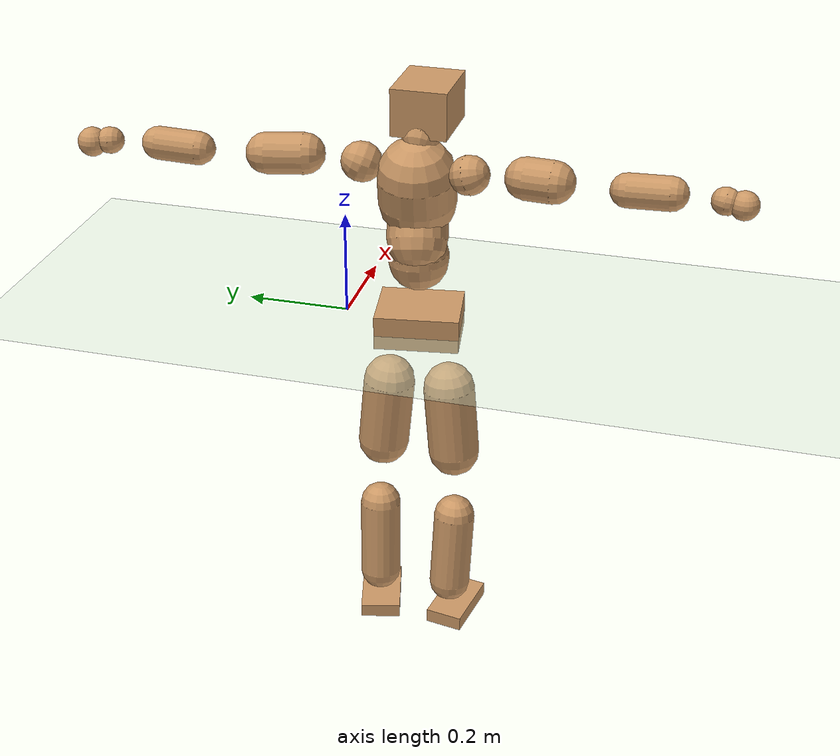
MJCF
<mujoco model="humanoid">
  <compiler coordinate="local" angle="radian"/>
  <default>
    <joint damping="0.0" armature="0.01" stiffness="0.0" limited="true"/>
    <geom conaffinity="1" condim="3" contype="7" margin="0.001" rgba="0.8 0.6 .4 1"/>
  </default>
  <asset>
    <texture type="skybox" builtin="gradient" rgb1=".4 .5 .6" rgb2="0 0 0" width="100" height="100"/>
    <texture builtin="flat" height="1278" mark="cross" markrgb="1 1 1" name="texgeom" random="0.01" rgb1="0.8 0.6 0.4" rgb2="0.8 0.6 0.4" type="cube" width="127"/>
    <texture builtin="checker" height="100" name="texplane" rgb1="0 0 0" rgb2="0.8 0.8 0.8" type="2d" width="100"/>
    <material name="MatPlane" reflectance="0.5" shininess="1" specular="1" texrepeat="60 60" texture="texplane"/>
    <material name="geom" texture="texgeom" texuniform="true"/>
  </asset>
  <worldbody>
    <light cutoff="100" diffuse="1 1 1" dir="-0 0 -1.3" directional="true" exponent="1" pos="0 0 1.3" specular=".1 .1 .1"/>
    <geom conaffinity="1" condim="3" name="floor" pos="0 0 0" rgba="0.8 0.9 0.8 1" size="100 100 .2" type="plane" material="MatPlane"/>
    <body name="Pelvis" pos="-0.0067 -0.1484 0.0145">
      <freejoint name="Pelvis"/>
      <geom type="box" contype="1" conaffinity="1" density="5359.374242" pos="-0.0044 -0.0006 -0.0103" size="0.066 0.0806 0.0328" quat="0.9973 0.0000 0.0000 0.0733" name="Pelvis"/>
      <body name="L_Hip" pos="-0.0061 0.0528 -0.0711">
        <joint name="L_Hip_x" type="hinge" pos="0 0 0" axis="1 0 0" stiffness="1600" damping="160" armature="0.02" range="-180.0000 180.0000"/>
        <joint name="L_Hip_y" type="hinge" pos="0 0 0" axis="0 1 0" stiffness="1600" damping="160" armature="0.02" range="-180.0000 180.0000"/>
        <joint name="L_Hip_z" type="hinge" pos="0 0 0" axis="0 0 1" stiffness="1600" damping="160" armature="0.02" range="-180.0000 180.0000"/>
        <geom type="capsule" contype="1" conaffinity="1" density="2040.816327" size="0.0505" fromto="-0.0004 0.0069 -0.0802 -0.0012 0.0190 -0.2199" name="L_Hip"/>
        <body name="L_Knee" pos="-0.0016 0.026 -0.3">
          <joint name="L_Knee_x" type="hinge" pos="0 0 0" axis="1 0 0" stiffness="1600" damping="160" armature="0.02" range="-180.0000 180.0000"/>
          <joint name="L_Knee_y" type="hinge" pos="0 0 0" axis="0 1 0" stiffness="1600" damping="160" armature="0.02" range="-180.0000 180.0000"/>
          <joint name="L_Knee_z" type="hinge" pos="0 0 0" axis="0 0 1" stiffness="1600" damping="160" armature="0.02" range="-180.0000 180.0000"/>
          <geom type="capsule" contype="1" conaffinity="1" density="1234.567901" size="0.041" fromto="-0.0068 -0.0015 -0.0707 -0.0222 -0.0048 -0.2300" name="L_Knee"/>
          <body name="L_Ankle" pos="-0.029 -0.0063 -0.3007">
            <joint name="L_Ankle_x" type="hinge" pos="0 0 0" axis="1 0 0" stiffness="1600" damping="160" armature="0.02" range="-180.0000 180.0000"/>
            <joint name="L_Ankle_y" type="hinge" pos="0 0 0" axis="0 1 0" stiffness="1600" damping="160" armature="0.02" range="-180.0000 180.0000"/>
            <joint name="L_Ankle_z" type="hinge" pos="0 0 0" axis="0 0 1" stiffness="1600" damping="160" armature="0.02" range="-180.0000 180.0000"/>
            <geom type="box" contype="1" conaffinity="1" density="999.999974" pos="0.0453 0.0112 -0.0214" size="0.0684 0.0404 0.014" quat="0.9927 0.0000 0.0000 0.1208" name="L_Ankle"/>
            <body name="L_Toe" pos="0.0906 0.0224 -0.0428">
              <joint name="L_Toe_x" type="hinge" pos="0 0 0" axis="1 0 0" stiffness="1000" damping="100" armature="0.02" range="-180.0000 180.0000"/>
              <joint name="L_Toe_y" type="hinge" pos="0 0 0" axis="0 1 0" stiffness="1000" damping="100" armature="0.02" range="-180.0000 180.0000"/>
              <joint name="L_Toe_z" type="hinge" pos="0 0 0" axis="0 0 1" stiffness="1000" damping="100" armature="0.02" range="-180.0000 180.0000"/>
              <geom type="box" contype="1" conaffinity="1" density="8196930.76842" pos="0.0000 0.0000 0.0235" size="0.0007 0.002 0.0008" quat="0.9917 0.0000 0.0000 0.1284" name="L_Toe"/>
            </body>
          </body>
        </body>
      </body>
      <body name="R_Hip" pos="-0.0047 -0.0539 -0.0709">
        <joint name="R_Hip_x" type="hinge" pos="0 0 0" axis="1 0 0" stiffness="1600" damping="160" armature="0.02" range="-180.0000 180.0000"/>
        <joint name="R_Hip_y" type="hinge" pos="0 0 0" axis="0 1 0" stiffness="1600" damping="160" armature="0.02" range="-180.0000 180.0000"/>
        <joint name="R_Hip_z" type="hinge" pos="0 0 0" axis="0 0 1" stiffness="1600" damping="160" armature="0.02" range="-180.0000 180.0000"/>
        <geom type="capsule" contype="1" conaffinity="1" density="2040.816327" size="0.0502" fromto="-0.0011 -0.0072 -0.0799 -0.0031 -0.0201 -0.2236" name="R_Hip"/>
        <body name="R_Knee" pos="-0.0042 -0.0273 -0.3034">
          <joint name="R_Knee_x" type="hinge" pos="0 0 0" axis="1 0 0" stiffness="1600" damping="160" armature="0.02" range="-180.0000 180.0000"/>
          <joint name="R_Knee_y" type="hinge" pos="0 0 0" axis="0 1 0" stiffness="1600" damping="160" armature="0.02" range="-180.0000 180.0000"/>
          <joint name="R_Knee_z" type="hinge" pos="0 0 0" axis="0 0 1" stiffness="1600" damping="160" armature="0.02" range="-180.0000 180.0000"/>
          <geom type="capsule" contype="1" conaffinity="1" density="1234.567901" size="0.0412" fromto="-0.0066 0.0019 -0.0709 -0.0211 0.0061 -0.2271" name="R_Knee"/>
          <body name="R_Ankle" pos="-0.0277 0.008 -0.298">
            <joint name="R_Ankle_x" type="hinge" pos="0 0 0" axis="1 0 0" stiffness="1600" damping="160" armature="0.02" range="-180.0000 180.0000"/>
            <joint name="R_Ankle_y" type="hinge" pos="0 0 0" axis="0 1 0" stiffness="1600" damping="160" armature="0.02" range="-180.0000 180.0000"/>
            <joint name="R_Ankle_z" type="hinge" pos="0 0 0" axis="0 0 1" stiffness="1600" damping="160" armature="0.02" range="-180.0000 180.0000"/>
            <geom type="box" contype="1" conaffinity="1" density="1000.000051" pos="0.0459 -0.0077 -0.0170" size="0.0669 0.0374 0.0147" quat="0.9966 0.0000 0.0000 -0.0830" name="R_Ankle"/>
            <body name="R_Toe" pos="0.0918 -0.0154 -0.0341">
              <joint name="R_Toe_x" type="hinge" pos="0 0 0" axis="1 0 0" stiffness="1000" damping="100" armature="0.02" range="-180.0000 180.0000"/>
              <joint name="R_Toe_y" type="hinge" pos="0 0 0" axis="0 1 0" stiffness="1000" damping="100" armature="0.02" range="-180.0000 180.0000"/>
              <joint name="R_Toe_z" type="hinge" pos="0 0 0" axis="0 0 1" stiffness="1000" damping="100" armature="0.02" range="-180.0000 180.0000"/>
              <geom type="box" contype="1" conaffinity="1" density="8500181.877688" pos="0.0000 0.0000 0.0188" size="0.0007 0.0019 0.0008" quat="0.9975 0.0000 0.0000 -0.0709" name="R_Toe"/>
            </body>
          </body>
        </body>
      </body>
      <body name="Torso" pos="-0.0155 -0.0028 0.0802">
        <joint name="Torso_x" type="hinge" pos="0 0 0" axis="1 0 0" stiffness="2000" damping="200" armature="0.02" range="-180.0000 180.0000"/>
        <joint name="Torso_y" type="hinge" pos="0 0 0" axis="0 1 0" stiffness="2000" damping="200" armature="0.02" range="-180.0000 180.0000"/>
        <joint name="Torso_z" type="hinge" pos="0 0 0" axis="0 0 1" stiffness="2000" damping="200" armature="0.02" range="-180.0000 180.0000"/>
        <geom type="capsule" contype="1" conaffinity="1" density="2040.816327" size="0.0573" fromto="-0.0004 0.0026 0.0572 -0.0003 0.0019 0.0425" name="Torso"/>
        <body name="Spine" pos="-0.0007 0.0045 0.0998">
          <joint name="Spine_x" type="hinge" pos="0 0 0" axis="1 0 0" stiffness="2000" damping="200" armature="0.02" range="-180.0000 180.0000"/>
          <joint name="Spine_y" type="hinge" pos="0 0 0" axis="0 1 0" stiffness="2000" damping="200" armature="0.02" range="-180.0000 180.0000"/>
          <joint name="Spine_z" type="hinge" pos="0 0 0" axis="0 0 1" stiffness="2000" damping="200" armature="0.02" range="-180.0000 180.0000"/>
          <geom type="capsule" contype="1" conaffinity="1" density="2040.816327" size="0.0578" fromto="0.0281 0.0064 0.0501 -0.0078 -0.0018 -0.0138" name="Spine"/>
          <body name="Chest" pos="0.0203 0.0046 0.0363">
            <joint name="Chest_x" type="hinge" pos="0 0 0" axis="1 0 0" stiffness="2000" damping="200" armature="0.02" range="-180.0000 180.0000"/>
            <joint name="Chest_y" type="hinge" pos="0 0 0" axis="0 1 0" stiffness="2000" damping="200" armature="0.02" range="-180.0000 180.0000"/>
            <joint name="Chest_z" type="hinge" pos="0 0 0" axis="0 0 1" stiffness="2000" damping="200" armature="0.02" range="-180.0000 180.0000"/>
            <geom type="capsule" contype="1" conaffinity="1" density="2040.816327" size="0.0737" fromto="-0.0151 -0.0013 0.0722 -0.0046 -0.0004 0.0221" name="Chest"/>
            <body name="Neck" pos="-0.0187 -0.004 0.1247">
              <joint name="Neck_x" type="hinge" pos="0 0 0" axis="1 0 0" stiffness="1000" damping="100" armature="0.02" range="-180.0000 180.0000"/>
              <joint name="Neck_y" type="hinge" pos="0 0 0" axis="0 1 0" stiffness="1000" damping="100" armature="0.02" range="-180.0000 180.0000"/>
              <joint name="Neck_z" type="hinge" pos="0 0 0" axis="0 0 1" stiffness="1000" damping="100" armature="0.02" range="-180.0000 180.0000"/>
              <geom type="capsule" contype="1" conaffinity="1" density="1000" size="0.0348" fromto="0.0230 -0.0013 0.0261 0.0159 -0.0009 0.0180" name="Neck"/>
              <body name="Head" pos="0.039 -0.0023 0.0441">
                <joint name="Head_x" type="hinge" pos="0 0 0" axis="1 0 0" stiffness="1000" damping="100" armature="0.02" range="-180.0000 180.0000"/>
                <joint name="Head_y" type="hinge" pos="0 0 0" axis="0 1 0" stiffness="1000" damping="100" armature="0.02" range="-180.0000 180.0000"/>
                <joint name="Head_z" type="hinge" pos="0 0 0" axis="0 0 1" stiffness="1000" damping="100" armature="0.02" range="-180.0000 180.0000"/>
                <geom type="box" contype="1" conaffinity="1" density="2249.999891" pos="0.0205 -0.0001 0.0230" size="0.0678 0.0527 0.0445" quat="1.0000 0.0000 0.0000 -0.0031" name="Head"/>
              </body>
            </body>
            <body name="L_Thorax" pos="-0.0196 0.0639 0.0797">
              <joint name="L_Thorax_x" type="hinge" pos="0 0 0" axis="1 0 0" stiffness="1000" damping="100" armature="0.02" range="-180.0000 180.0000"/>
              <joint name="L_Thorax_y" type="hinge" pos="0 0 0" axis="0 1 0" stiffness="1000" damping="100" armature="0.02" range="-180.0000 180.0000"/>
              <joint name="L_Thorax_z" type="hinge" pos="0 0 0" axis="0 0 1" stiffness="1000" damping="100" armature="0.02" range="-180.0000 180.0000"/>
              <geom type="capsule" contype="1" conaffinity="1" density="1000" size="0.038" fromto="-0.0053 0.0351 0.0130 -0.0056 0.0369 0.0137" name="L_Thorax"/>
              <body name="L_Shoulder" pos="-0.0109 0.072 0.0267">
                <joint name="L_Shoulder_x" type="hinge" pos="0 0 0" axis="1 0 0" stiffness="1000" damping="100" armature="0.02" range="-720.0000 720.0000"/>
                <joint name="L_Shoulder_y" type="hinge" pos="0 0 0" axis="0 1 0" stiffness="1000" damping="100" armature="0.02" range="-720.0000 720.0000"/>
                <joint name="L_Shoulder_z" type="hinge" pos="0 0 0" axis="0 0 1" stiffness="1000" damping="100" armature="0.02" range="-720.0000 720.0000"/>
                <geom type="capsule" contype="1" conaffinity="1" density="1000" size="0.0388" fromto="-0.0098 0.0681 -0.0026 -0.0197 0.1376 -0.0052" name="L_Shoulder"/>
                <body name="L_Elbow" pos="-0.0295 0.2057 -0.0078">
                  <joint name="L_Elbow_x" type="hinge" pos="0 0 0" axis="1 0 0" stiffness="1000" damping="100" armature="0.02" range="-720.0000 720.0000"/>
                  <joint name="L_Elbow_y" type="hinge" pos="0 0 0" axis="0 1 0" stiffness="1000" damping="100" armature="0.02" range="-720.0000 720.0000"/>
                  <joint name="L_Elbow_z" type="hinge" pos="0 0 0" axis="0 0 1" stiffness="1000" damping="100" armature="0.02" range="-720.0000 720.0000"/>
                  <geom type="capsule" contype="1" conaffinity="1" density="1000" size="0.0312" fromto="-0.0010 0.0612 0.0023 -0.0022 0.1397 0.0052" name="L_Elbow"/>
                  <body name="L_Wrist" pos="-0.0032 0.2009 0.0075">
                    <joint name="L_Wrist_x" type="hinge" pos="0 0 0" axis="1 0 0" stiffness="600" damping="60" armature="0.02" range="-180.0000 180.0000"/>
                    <joint name="L_Wrist_y" type="hinge" pos="0 0 0" axis="0 1 0" stiffness="600" damping="60" armature="0.02" range="-180.0000 180.0000"/>
                    <joint name="L_Wrist_z" type="hinge" pos="0 0 0" axis="0 0 1" stiffness="600" damping="60" armature="0.02" range="-180.0000 180.0000"/>
                    <geom type="capsule" contype="1" conaffinity="1" density="1000" size="0.0252" fromto="-0.0057 0.0328 -0.0041 -0.0060 0.0348 -0.0043" name="L_Wrist"/>
                    <body name="L_Hand" pos="-0.0117 0.0677 -0.0084">
                      <joint name="L_Hand_x" type="hinge" pos="0 0 0" axis="1 0 0" stiffness="600" damping="60" armature="0.02" range="-180.0000 180.0000"/>
                      <joint name="L_Hand_y" type="hinge" pos="0 0 0" axis="0 1 0" stiffness="600" damping="60" armature="0.02" range="-180.0000 180.0000"/>
                      <joint name="L_Hand_z" type="hinge" pos="0 0 0" axis="0 0 1" stiffness="600" damping="60" armature="0.02" range="-180.0000 180.0000"/>
                      <geom type="sphere" contype="1" conaffinity="1" density="1000" size="0.0275" pos="0.0000 0.0000 0.0000" name="L_Hand"/>
                    </body>
                  </body>
                </body>
              </body>
            </body>
            <body name="R_Thorax" pos="-0.0209 -0.065 0.0785">
              <joint name="R_Thorax_x" type="hinge" pos="0 0 0" axis="1 0 0" stiffness="1000" damping="100" armature="0.02" range="-180.0000 180.0000"/>
              <joint name="R_Thorax_y" type="hinge" pos="0 0 0" axis="0 1 0" stiffness="1000" damping="100" armature="0.02" range="-180.0000 180.0000"/>
              <joint name="R_Thorax_z" type="hinge" pos="0 0 0" axis="0 0 1" stiffness="1000" damping="100" armature="0.02" range="-180.0000 180.0000"/>
              <geom type="capsule" contype="1" conaffinity="1" density="1000" size="0.0368" fromto="-0.0068 -0.0364 0.0103 -0.0071 -0.0382 0.0109" name="R_Thorax"/>
              <body name="R_Shoulder" pos="-0.0139 -0.0746 0.0212">
                <joint name="R_Shoulder_x" type="hinge" pos="0 0 0" axis="1 0 0" stiffness="1000" damping="100" armature="0.02" range="-720.0000 720.0000"/>
                <joint name="R_Shoulder_y" type="hinge" pos="0 0 0" axis="0 1 0" stiffness="1000" damping="100" armature="0.02" range="-720.0000 720.0000"/>
                <joint name="R_Shoulder_z" type="hinge" pos="0 0 0" axis="0 0 1" stiffness="1000" damping="100" armature="0.02" range="-720.0000 720.0000"/>
                <geom type="capsule" contype="1" conaffinity="1" density="1000" size="0.0392" fromto="-0.0063 -0.0689 0.0004 -0.0108 -0.1188 0.0006" name="R_Shoulder"/>
                <body name="R_Elbow" pos="-0.017 -0.1877 0.001">
                  <joint name="R_Elbow_x" type="hinge" pos="0 0 0" axis="1 0 0" stiffness="1000" damping="100" armature="0.02" range="-720.0000 720.0000"/>
                  <joint name="R_Elbow_y" type="hinge" pos="0 0 0" axis="0 1 0" stiffness="1000" damping="100" armature="0.02" range="-720.0000 720.0000"/>
                  <joint name="R_Elbow_z" type="hinge" pos="0 0 0" axis="0 0 1" stiffness="1000" damping="100" armature="0.02" range="-720.0000 720.0000"/>
                  <geom type="capsule" contype="1" conaffinity="1" density="1000" size="0.0309" fromto="-0.0010 -0.0608 0.0021 -0.0023 -0.1369 0.0047" name="R_Elbow"/>
                  <body name="R_Wrist" pos="-0.0033 -0.1978 0.0067">
                    <joint name="R_Wrist_x" type="hinge" pos="0 0 0" axis="1 0 0" stiffness="600" damping="60" armature="0.02" range="-180.0000 180.0000"/>
                    <joint name="R_Wrist_y" type="hinge" pos="0 0 0" axis="0 1 0" stiffness="600" damping="60" armature="0.02" range="-180.0000 180.0000"/>
                    <joint name="R_Wrist_z" type="hinge" pos="0 0 0" axis="0 0 1" stiffness="600" damping="60" armature="0.02" range="-180.0000 180.0000"/>
                    <geom type="capsule" contype="1" conaffinity="1" density="1000" size="0.0248" fromto="-0.0040 -0.0308 -0.0028 -0.0042 -0.0328 -0.0030" name="R_Wrist"/>
                    <body name="R_Hand" pos="-0.0082 -0.0636 -0.0058">
                      <joint name="R_Hand_x" type="hinge" pos="0 0 0" axis="1 0 0" stiffness="600" damping="60" armature="0.02" range="-180.0000 180.0000"/>
                      <joint name="R_Hand_y" type="hinge" pos="0 0 0" axis="0 1 0" stiffness="600" damping="60" armature="0.02" range="-180.0000 180.0000"/>
                      <joint name="R_Hand_z" type="hinge" pos="0 0 0" axis="0 0 1" stiffness="600" damping="60" armature="0.02" range="-180.0000 180.0000"/>
                      <geom type="sphere" contype="1" conaffinity="1" density="1000" size="0.0260" pos="0.0000 0.0000 0.0000" name="R_Hand"/>
                    </body>
                  </body>
                </body>
              </body>
            </body>
          </body>
        </body>
      </body>
    </body>
  </worldbody>
  <actuator>
    <motor name="L_Hip_x" joint="L_Hip_x" gear="500"/>
    <motor name="L_Hip_y" joint="L_Hip_y" gear="500"/>
    <motor name="L_Hip_z" joint="L_Hip_z" gear="500"/>
    <motor name="L_Knee_x" joint="L_Knee_x" gear="500"/>
    <motor name="L_Knee_y" joint="L_Knee_y" gear="500"/>
    <motor name="L_Knee_z" joint="L_Knee_z" gear="500"/>
    <motor name="L_Ankle_x" joint="L_Ankle_x" gear="500"/>
    <motor name="L_Ankle_y" joint="L_Ankle_y" gear="500"/>
    <motor name="L_Ankle_z" joint="L_Ankle_z" gear="500"/>
    <motor name="L_Toe_x" joint="L_Toe_x" gear="500"/>
    <motor name="L_Toe_y" joint="L_Toe_y" gear="500"/>
    <motor name="L_Toe_z" joint="L_Toe_z" gear="500"/>
    <motor name="R_Hip_x" joint="R_Hip_x" gear="500"/>
    <motor name="R_Hip_y" joint="R_Hip_y" gear="500"/>
    <motor name="R_Hip_z" joint="R_Hip_z" gear="500"/>
    <motor name="R_Knee_x" joint="R_Knee_x" gear="500"/>
    <motor name="R_Knee_y" joint="R_Knee_y" gear="500"/>
    <motor name="R_Knee_z" joint="R_Knee_z" gear="500"/>
    <motor name="R_Ankle_x" joint="R_Ankle_x" gear="500"/>
    <motor name="R_Ankle_y" joint="R_Ankle_y" gear="500"/>
    <motor name="R_Ankle_z" joint="R_Ankle_z" gear="500"/>
    <motor name="R_Toe_x" joint="R_Toe_x" gear="500"/>
    <motor name="R_Toe_y" joint="R_Toe_y" gear="500"/>
    <motor name="R_Toe_z" joint="R_Toe_z" gear="500"/>
    <motor name="Torso_x" joint="Torso_x" gear="500"/>
    <motor name="Torso_y" joint="Torso_y" gear="500"/>
    <motor name="Torso_z" joint="Torso_z" gear="500"/>
    <motor name="Spine_x" joint="Spine_x" gear="500"/>
    <motor name="Spine_y" joint="Spine_y" gear="500"/>
    <motor name="Spine_z" joint="Spine_z" gear="500"/>
    <motor name="Chest_x" joint="Chest_x" gear="500"/>
    <motor name="Chest_y" joint="Chest_y" gear="500"/>
    <motor name="Chest_z" joint="Chest_z" gear="500"/>
    <motor name="Neck_x" joint="Neck_x" gear="500"/>
    <motor name="Neck_y" joint="Neck_y" gear="500"/>
    <motor name="Neck_z" joint="Neck_z" gear="500"/>
    <motor name="Head_x" joint="Head_x" gear="500"/>
    <motor name="Head_y" joint="Head_y" gear="500"/>
    <motor name="Head_z" joint="Head_z" gear="500"/>
    <motor name="L_Thorax_x" joint="L_Thorax_x" gear="500"/>
    <motor name="L_Thorax_y" joint="L_Thorax_y" gear="500"/>
    <motor name="L_Thorax_z" joint="L_Thorax_z" gear="500"/>
    <motor name="L_Shoulder_x" joint="L_Shoulder_x" gear="500"/>
    <motor name="L_Shoulder_y" joint="L_Shoulder_y" gear="500"/>
    <motor name="L_Shoulder_z" joint="L_Shoulder_z" gear="500"/>
    <motor name="L_Elbow_x" joint="L_Elbow_x" gear="500"/>
    <motor name="L_Elbow_y" joint="L_Elbow_y" gear="500"/>
    <motor name="L_Elbow_z" joint="L_Elbow_z" gear="500"/>
    <motor name="L_Wrist_x" joint="L_Wrist_x" gear="500"/>
    <motor name="L_Wrist_y" joint="L_Wrist_y" gear="500"/>
    <motor name="L_Wrist_z" joint="L_Wrist_z" gear="500"/>
    <motor name="L_Hand_x" joint="L_Hand_x" gear="500"/>
    <motor name="L_Hand_y" joint="L_Hand_y" gear="500"/>
    <motor name="L_Hand_z" joint="L_Hand_z" gear="500"/>
    <motor name="R_Thorax_x" joint="R_Thorax_x" gear="500"/>
    <motor name="R_Thorax_y" joint="R_Thorax_y" gear="500"/>
    <motor name="R_Thorax_z" joint="R_Thorax_z" gear="500"/>
    <motor name="R_Shoulder_x" joint="R_Shoulder_x" gear="500"/>
    <motor name="R_Shoulder_y" joint="R_Shoulder_y" gear="500"/>
    <motor name="R_Shoulder_z" joint="R_Shoulder_z" gear="500"/>
    <motor name="R_Elbow_x" joint="R_Elbow_x" gear="500"/>
    <motor name="R_Elbow_y" joint="R_Elbow_y" gear="500"/>
    <motor name="R_Elbow_z" joint="R_Elbow_z" gear="500"/>
    <motor name="R_Wrist_x" joint="R_Wrist_x" gear="500"/>
    <motor name="R_Wrist_y" joint="R_Wrist_y" gear="500"/>
    <motor name="R_Wrist_z" joint="R_Wrist_z" gear="500"/>
    <motor name="R_Hand_x" joint="R_Hand_x" gear="500"/>
    <motor name="R_Hand_y" joint="R_Hand_y" gear="500"/>
    <motor name="R_Hand_z" joint="R_Hand_z" gear="500"/>
  </actuator>
  <contact>
    <exclude body1="Torso" body2="Chest"/>
    <exclude body1="Head" body2="Chest"/>
    <exclude body1="R_Knee" body2="R_Toe"/>
    <exclude body1="R_Knee" body2="L_Ankle"/>
    <exclude body1="R_Knee" body2="L_Toe"/>
    <exclude body1="L_Knee" body2="L_Toe"/>
    <exclude body1="L_Knee" body2="R_Ankle"/>
    <exclude body1="L_Knee" body2="R_Toe"/>
    <exclude body1="L_Shoulder" body2="Chest"/>
    <exclude body1="R_Shoulder" body2="Chest"/>
  </contact>
  <sensor/>
  <size njmax="700" nconmax="700"/>
</mujoco>
